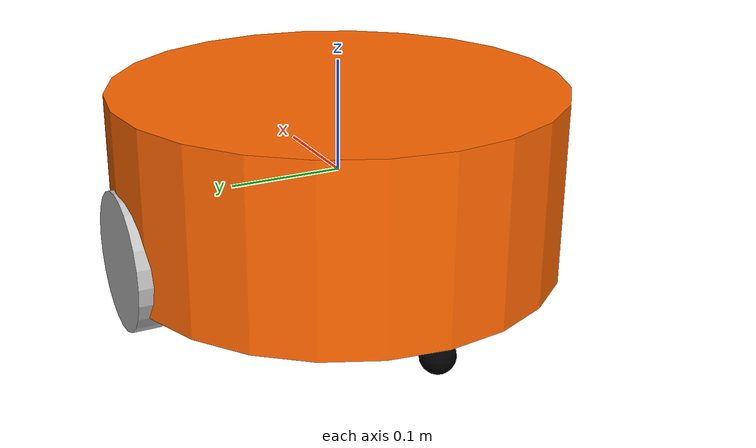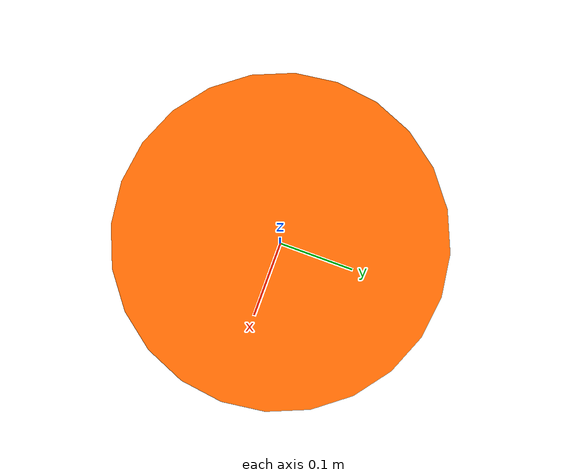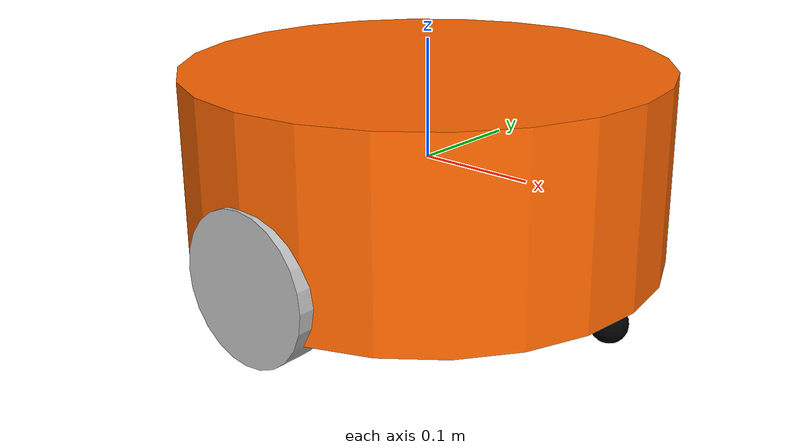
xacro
<!--
声明了XML文档的版本，并开始一个名为"mbot"的机器人标签。
xmlns:xacro属性定义了Xacro的命名空间。
-->
<?xml version="1.0"?>
<robot name="mbot" xmlns:xacro="http://www.ros.org/wiki/xacro">

    <!-- Property List -->
    <!--
    定义了一些常量属性，这些属性在Xacro文件中可以被重用。
    M_PI是圆周率π的近似值，base_radius和base_length分别是机器人基座的半径和长度。
    -->
    <xacro:property name="M_PI" value="3.1415926"/>
    <xacro:property name="base_radius" value="0.20"/>
    <xacro:property name="base_length" value="0.16"/>

    <!--
    定义了与轮子相关的属性，包括轮子的半径、长度以及轮子关节在Y和Z轴上的位置。
    -->
    <xacro:property name="wheel_radius" value="0.06"/>
    <xacro:property name="wheel_length" value="0.025"/>
    <xacro:property name="wheel_joint_y" value="0.19"/>
    <xacro:property name="wheel_joint_z" value="0.05"/>

    <!--
    定义了与支撑轮（caster）相关的属性，包括支撑轮的半径和支撑轮关节在X轴上的位置。
    -->
    <xacro:property name="caster_radius"  value="0.015"/> <!-- wheel_radius - ( base_length/2 - wheel_joint_z) -->
    <xacro:property name="caster_joint_x" value="0.18"/>

    <!-- Defining the colors used in this robot -->
    <material name="yellow">
        <color rgba="1 0.4 0 1"/>
    </material>
    <material name="black">
        <color rgba="0 0 0 0.95"/>
    </material>
    <material name="gray">
        <color rgba="0.75 0.75 0.75 1"/>
    </material>

    <!-- Macro for robot wheel -->
    <!--
    定义了一个名为"wheel"的宏，它接受两个参数：
    "prefix"用于命名关节和链接，"reflect"用于确定轮子在Y轴上的位置（正或负）。
    -->
    <xacro:macro name="wheel" params="prefix reflect">
        <joint name="${prefix}_wheel_joint" type="continuous">
            <origin xyz="0 ${reflect*wheel_joint_y} ${-wheel_joint_z}" rpy="0 0 0"/>
            <parent link="base_link"/>
            <child link="${prefix}_wheel_link"/>
            <axis xyz="0 1 0"/>
        </joint>

        <link name="${prefix}_wheel_link">
            <visual>
                <origin xyz="0 0 0" rpy="${M_PI/2} 0 0" />
                <geometry>
                    <cylinder radius="${wheel_radius}" length = "${wheel_length}"/>
                </geometry>
                <material name="gray" />
            </visual>
        </link>
    </xacro:macro>

    <!-- Macro for robot caster -->
    <!--
    定义了一个名为"caster"的宏，它接受两个参数：
    "prefix"用于命名关节和链接，"reflect"用于确定支撑轮在X轴上的位置（正或负）。
    -->
    <xacro:macro name="caster" params="prefix reflect">
        <joint name="${prefix}_caster_joint" type="continuous">
            <origin xyz="${reflect*caster_joint_x} 0 ${-(base_length/2 + caster_radius)}" rpy="0 0 0"/>
            <parent link="base_link"/>
            <child link="${prefix}_caster_link"/>
            <axis xyz="0 1 0"/>
        </joint>

        <link name="${prefix}_caster_link">
            <visual>
                <origin xyz="0 0 0" rpy="0 0 0"/>
                <geometry>
                    <sphere radius="${caster_radius}" />
                </geometry>
                <material name="black" />
            </visual>
        </link>
    </xacro:macro>

    <!--
    定义了机器人的基座链接（base_link），这是一个圆柱形的视觉元素。
    -->
	<link name="base_link">
	    <visual>
			<origin xyz=" 0 0 0" rpy="0 0 0" />
			<geometry>
				<cylinder length="${base_length}" radius="${base_radius}"/>
			</geometry>
			<material name="yellow" />
	    </visual>
	</link>

    <!--
    使用"wheel"宏创建了两个轮子，一个在左边（prefix="left"），一个在右边（prefix="right"）。
    -->
	<xacro:wheel prefix="left"  reflect="1"/>
	<xacro:wheel prefix="right" reflect="-1"/>

    <!--
    使用"caster"宏创建了两个支撑轮，一个在前面（prefix="front"），一个在后面（prefix="back"）。
    -->
	<xacro:caster prefix="front" reflect="-1"/>
	<xacro:caster prefix="back"  reflect="1"/>

</robot>
